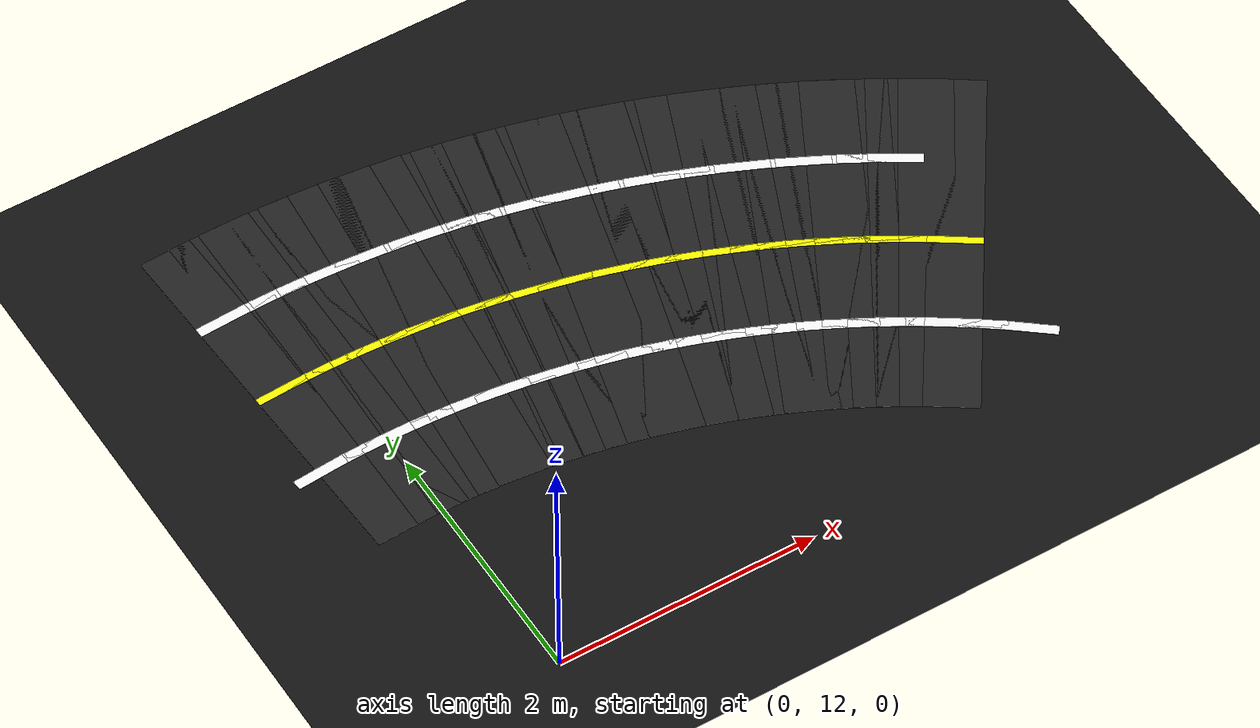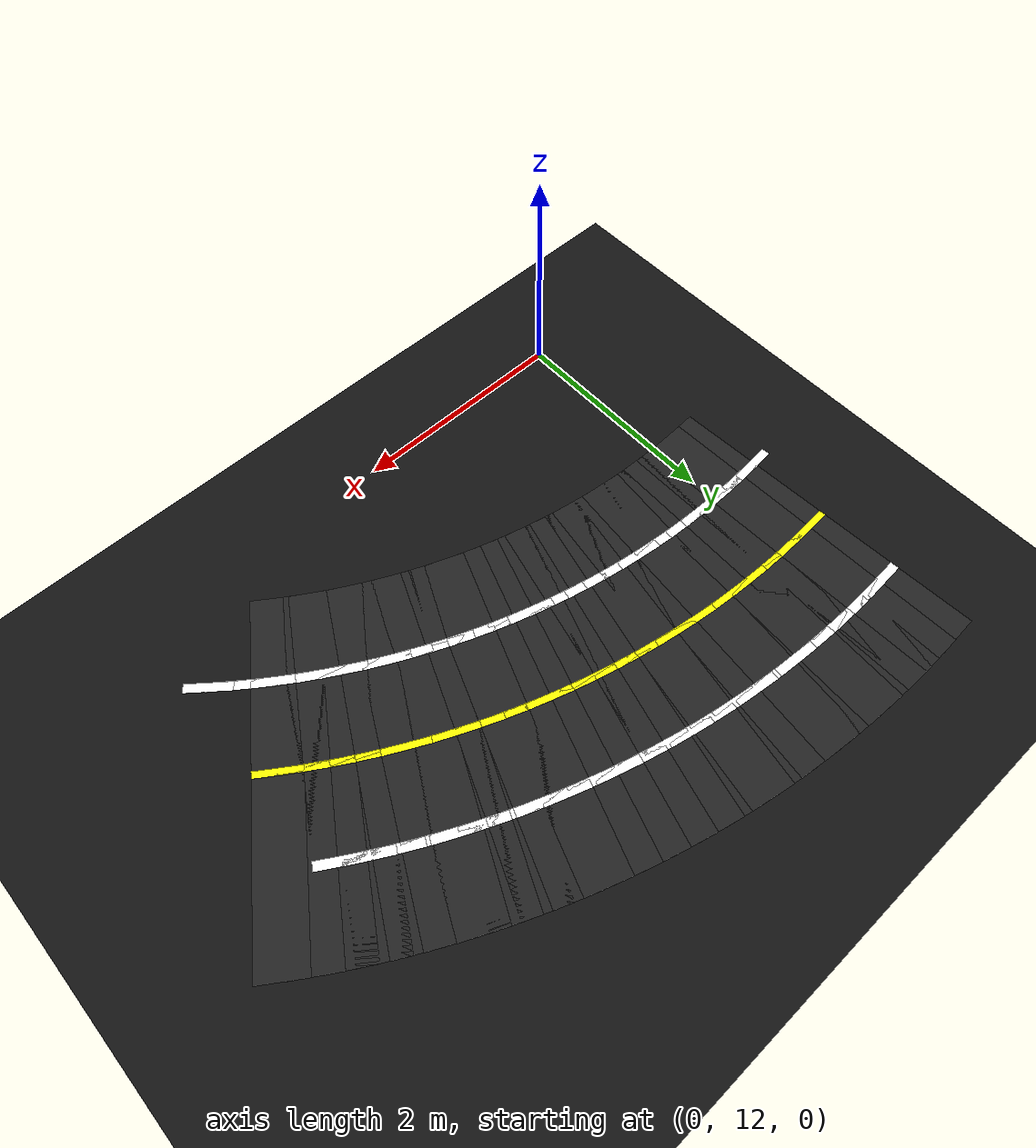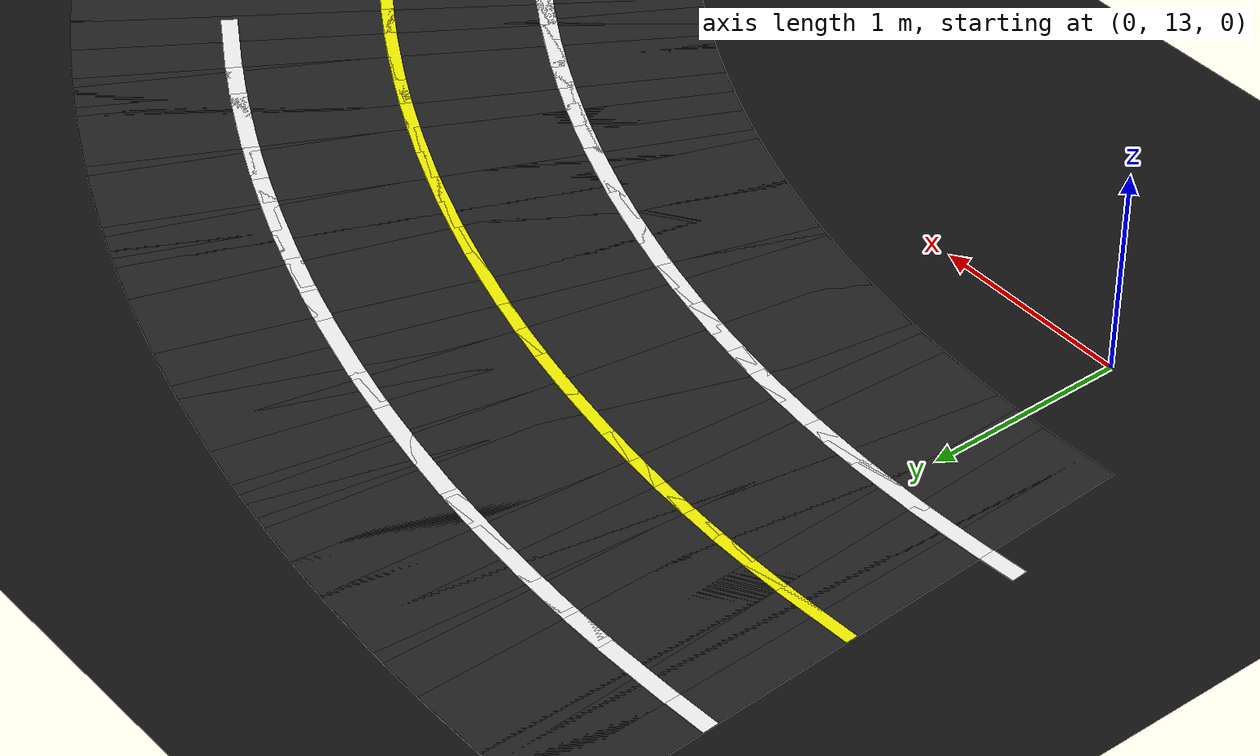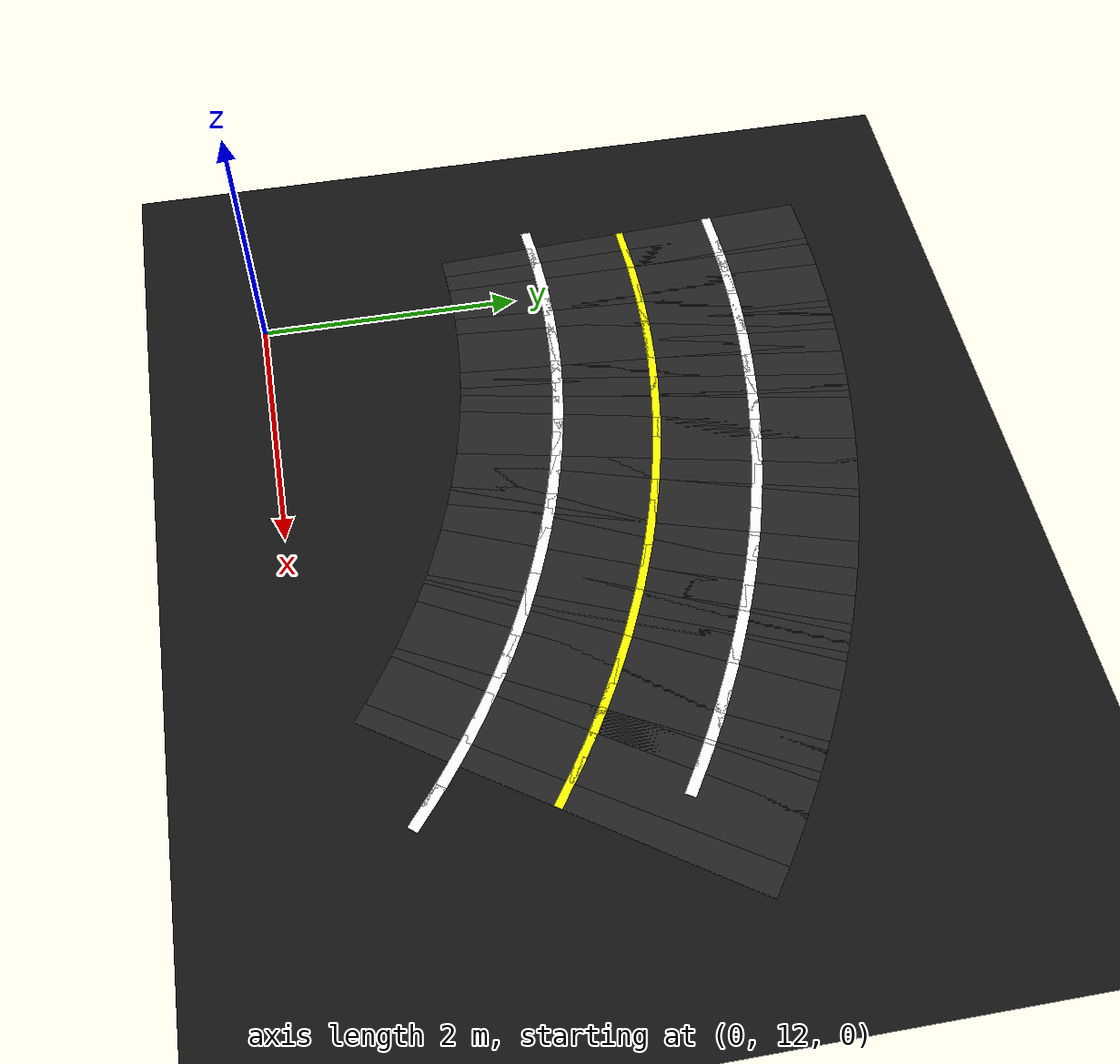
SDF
<sdf version="1.6">
 <world name="figure8_world">
  <model name="ground_plane">
   <static>true</static>
   <link name="link">
    <collision name="collision">
     <geometry><plane><normal>0 0 1</normal><size>120 120</size></plane></geometry>
    </collision>
    <visual name="visual">
     <geometry><plane><normal>0 0 1</normal><size>120 120</size></plane></geometry>
     <material><ambient>0.08 0.08 0.08 1</ambient><diffuse>0.08 0.08 0.08 1</diffuse></material>
    </visual>
   </link>
  </model>
  <model name="seg_00138">
   <static>true</static>
   <pose>4.2479 12.7457 0.0030 0 0 2.4609</pose>
   <link name="link">
    <collision name="collision"><geometry><box><size>0.4000 0.0800 0.002</size></box></geometry></collision>
    <visual name="visual">
     <geometry><box><size>0.4000 0.0800 0.002</size></box></geometry>
     <material><ambient>1 1 1 1</ambient><diffuse>1 1 1 1</diffuse></material>
    </visual>
   </link>
  </model>
  <model name="seg_00142">
   <static>true</static>
   <pose>4.1091 12.8551 0.0030 0 0 2.4871</pose>
   <link name="link">
    <collision name="collision"><geometry><box><size>0.4000 0.0800 0.002</size></box></geometry></collision>
    <visual name="visual">
     <geometry><box><size>0.4000 0.0800 0.002</size></box></geometry>
     <material><ambient>1 1 1 1</ambient><diffuse>1 1 1 1</diffuse></material>
    </visual>
   </link>
  </model>
  <model name="seg_00146">
   <static>true</static>
   <pose>3.9676 12.9609 0.0030 0 0 2.5133</pose>
   <link name="link">
    <collision name="collision"><geometry><box><size>0.4000 0.0800 0.002</size></box></geometry></collision>
    <visual name="visual">
     <geometry><box><size>0.4000 0.0800 0.002</size></box></geometry>
     <material><ambient>1 1 1 1</ambient><diffuse>1 1 1 1</diffuse></material>
    </visual>
   </link>
  </model>
  <model name="seg_00148">
   <static>true</static>
   <pose>4.2480 13.6809 0.0010 0 0 2.5395</pose>
   <link name="link">
    <collision name="collision"><geometry><box><size>0.4000 3.0000 0.002</size></box></geometry></collision>
    <visual name="visual">
     <geometry><box><size>0.4000 3.0000 0.002</size></box></geometry>
     <material><ambient>0.14 0.14 0.14 1</ambient><diffuse>0.14 0.14 0.14 1</diffuse></material>
    </visual>
   </link>
  </model>
  <model name="seg_00150">
   <static>true</static>
   <pose>3.8232 13.0629 0.0030 0 0 2.5395</pose>
   <link name="link">
    <collision name="collision"><geometry><box><size>0.4000 0.0800 0.002</size></box></geometry></collision>
    <visual name="visual">
     <geometry><box><size>0.4000 0.0800 0.002</size></box></geometry>
     <material><ambient>1 1 1 1</ambient><diffuse>1 1 1 1</diffuse></material>
    </visual>
   </link>
  </model>
  <model name="seg_00151">
   <static>true</static>
   <pose>4.2480 13.6809 0.0030 0 0 2.5395</pose>
   <link name="link">
    <collision name="collision"><geometry><box><size>0.4000 0.0600 0.002</size></box></geometry></collision>
    <visual name="visual">
     <geometry><box><size>0.4000 0.0600 0.002</size></box></geometry>
     <material><ambient>1 1 0 1</ambient><diffuse>1 1 0 1</diffuse></material>
    </visual>
   </link>
  </model>
  <model name="seg_00152">
   <static>true</static>
   <pose>4.0848 13.7900 0.0010 0 0 2.5656</pose>
   <link name="link">
    <collision name="collision"><geometry><box><size>0.4000 3.0000 0.002</size></box></geometry></collision>
    <visual name="visual">
     <geometry><box><size>0.4000 3.0000 0.002</size></box></geometry>
     <material><ambient>0.14 0.14 0.14 1</ambient><diffuse>0.14 0.14 0.14 1</diffuse></material>
    </visual>
   </link>
  </model>
  <model name="seg_00154">
   <static>true</static>
   <pose>3.6763 13.1610 0.0030 0 0 2.5656</pose>
   <link name="link">
    <collision name="collision"><geometry><box><size>0.4000 0.0800 0.002</size></box></geometry></collision>
    <visual name="visual">
     <geometry><box><size>0.4000 0.0800 0.002</size></box></geometry>
     <material><ambient>1 1 1 1</ambient><diffuse>1 1 1 1</diffuse></material>
    </visual>
   </link>
  </model>
  <model name="seg_00155">
   <static>true</static>
   <pose>4.0848 13.7900 0.0030 0 0 2.5656</pose>
   <link name="link">
    <collision name="collision"><geometry><box><size>0.4000 0.0600 0.002</size></box></geometry></collision>
    <visual name="visual">
     <geometry><box><size>0.4000 0.0600 0.002</size></box></geometry>
     <material><ambient>1 1 0 1</ambient><diffuse>1 1 0 1</diffuse></material>
    </visual>
   </link>
  </model>
  <model name="seg_00156">
   <static>true</static>
   <pose>3.9187 13.8948 0.0010 0 0 2.5918</pose>
   <link name="link">
    <collision name="collision"><geometry><box><size>0.4000 3.0000 0.002</size></box></geometry></collision>
    <visual name="visual">
     <geometry><box><size>0.4000 3.0000 0.002</size></box></geometry>
     <material><ambient>0.14 0.14 0.14 1</ambient><diffuse>0.14 0.14 0.14 1</diffuse></material>
    </visual>
   </link>
  </model>
  <model name="seg_00157">
   <static>true</static>
   <pose>4.3106 14.5343 0.0030 0 0 2.5918</pose>
   <link name="link">
    <collision name="collision"><geometry><box><size>0.4000 0.0800 0.002</size></box></geometry></collision>
    <visual name="visual">
     <geometry><box><size>0.4000 0.0800 0.002</size></box></geometry>
     <material><ambient>1 1 1 1</ambient><diffuse>1 1 1 1</diffuse></material>
    </visual>
   </link>
  </model>
  <model name="seg_00158">
   <static>true</static>
   <pose>3.5269 13.2553 0.0030 0 0 2.5918</pose>
   <link name="link">
    <collision name="collision"><geometry><box><size>0.4000 0.0800 0.002</size></box></geometry></collision>
    <visual name="visual">
     <geometry><box><size>0.4000 0.0800 0.002</size></box></geometry>
     <material><ambient>1 1 1 1</ambient><diffuse>1 1 1 1</diffuse></material>
    </visual>
   </link>
  </model>
  <model name="seg_00159">
   <static>true</static>
   <pose>3.9187 13.8948 0.0030 0 0 2.5918</pose>
   <link name="link">
    <collision name="collision"><geometry><box><size>0.4000 0.0600 0.002</size></box></geometry></collision>
    <visual name="visual">
     <geometry><box><size>0.4000 0.0600 0.002</size></box></geometry>
     <material><ambient>1 1 0 1</ambient><diffuse>1 1 0 1</diffuse></material>
    </visual>
   </link>
  </model>
  <model name="seg_00160">
   <static>true</static>
   <pose>3.7500 13.9952 0.0010 0 0 2.6180</pose>
   <link name="link">
    <collision name="collision"><geometry><box><size>0.4000 3.0000 0.002</size></box></geometry></collision>
    <visual name="visual">
     <geometry><box><size>0.4000 3.0000 0.002</size></box></geometry>
     <material><ambient>0.14 0.14 0.14 1</ambient><diffuse>0.14 0.14 0.14 1</diffuse></material>
    </visual>
   </link>
  </model>
  <model name="seg_00161">
   <static>true</static>
   <pose>4.1250 14.6447 0.0030 0 0 2.6180</pose>
   <link name="link">
    <collision name="collision"><geometry><box><size>0.4000 0.0800 0.002</size></box></geometry></collision>
    <visual name="visual">
     <geometry><box><size>0.4000 0.0800 0.002</size></box></geometry>
     <material><ambient>1 1 1 1</ambient><diffuse>1 1 1 1</diffuse></material>
    </visual>
   </link>
  </model>
  <model name="seg_00162">
   <static>true</static>
   <pose>3.3750 13.3457 0.0030 0 0 2.6180</pose>
   <link name="link">
    <collision name="collision"><geometry><box><size>0.4000 0.0800 0.002</size></box></geometry></collision>
    <visual name="visual">
     <geometry><box><size>0.4000 0.0800 0.002</size></box></geometry>
     <material><ambient>1 1 1 1</ambient><diffuse>1 1 1 1</diffuse></material>
    </visual>
   </link>
  </model>
  <model name="seg_00163">
   <static>true</static>
   <pose>3.7500 13.9952 0.0030 0 0 2.6180</pose>
   <link name="link">
    <collision name="collision"><geometry><box><size>0.4000 0.0600 0.002</size></box></geometry></collision>
    <visual name="visual">
     <geometry><box><size>0.4000 0.0600 0.002</size></box></geometry>
     <material><ambient>1 1 0 1</ambient><diffuse>1 1 0 1</diffuse></material>
    </visual>
   </link>
  </model>
  <model name="seg_00164">
   <static>true</static>
   <pose>3.5787 14.0911 0.0010 0 0 2.6442</pose>
   <link name="link">
    <collision name="collision"><geometry><box><size>0.4000 3.0000 0.002</size></box></geometry></collision>
    <visual name="visual">
     <geometry><box><size>0.4000 3.0000 0.002</size></box></geometry>
     <material><ambient>0.14 0.14 0.14 1</ambient><diffuse>0.14 0.14 0.14 1</diffuse></material>
    </visual>
   </link>
  </model>
  <model name="seg_00165">
   <static>true</static>
   <pose>3.9366 14.7502 0.0030 0 0 2.6442</pose>
   <link name="link">
    <collision name="collision"><geometry><box><size>0.4000 0.0800 0.002</size></box></geometry></collision>
    <visual name="visual">
     <geometry><box><size>0.4000 0.0800 0.002</size></box></geometry>
     <material><ambient>1 1 1 1</ambient><diffuse>1 1 1 1</diffuse></material>
    </visual>
   </link>
  </model>
  <model name="seg_00166">
   <static>true</static>
   <pose>3.2208 13.4320 0.0030 0 0 2.6442</pose>
   <link name="link">
    <collision name="collision"><geometry><box><size>0.4000 0.0800 0.002</size></box></geometry></collision>
    <visual name="visual">
     <geometry><box><size>0.4000 0.0800 0.002</size></box></geometry>
     <material><ambient>1 1 1 1</ambient><diffuse>1 1 1 1</diffuse></material>
    </visual>
   </link>
  </model>
  <model name="seg_00167">
   <static>true</static>
   <pose>3.5787 14.0911 0.0030 0 0 2.6442</pose>
   <link name="link">
    <collision name="collision"><geometry><box><size>0.4000 0.0600 0.002</size></box></geometry></collision>
    <visual name="visual">
     <geometry><box><size>0.4000 0.0600 0.002</size></box></geometry>
     <material><ambient>1 1 0 1</ambient><diffuse>1 1 0 1</diffuse></material>
    </visual>
   </link>
  </model>
  <model name="seg_00168">
   <static>true</static>
   <pose>3.4049 14.1825 0.0010 0 0 2.6704</pose>
   <link name="link">
    <collision name="collision"><geometry><box><size>0.4000 3.0000 0.002</size></box></geometry></collision>
    <visual name="visual">
     <geometry><box><size>0.4000 3.0000 0.002</size></box></geometry>
     <material><ambient>0.14 0.14 0.14 1</ambient><diffuse>0.14 0.14 0.14 1</diffuse></material>
    </visual>
   </link>
  </model>
  <model name="seg_00169">
   <static>true</static>
   <pose>3.7454 14.8508 0.0030 0 0 2.6704</pose>
   <link name="link">
    <collision name="collision"><geometry><box><size>0.4000 0.0800 0.002</size></box></geometry></collision>
    <visual name="visual">
     <geometry><box><size>0.4000 0.0800 0.002</size></box></geometry>
     <material><ambient>1 1 1 1</ambient><diffuse>1 1 1 1</diffuse></material>
    </visual>
   </link>
  </model>
  <model name="seg_00170">
   <static>true</static>
   <pose>3.0644 13.5143 0.0030 0 0 2.6704</pose>
   <link name="link">
    <collision name="collision"><geometry><box><size>0.4000 0.0800 0.002</size></box></geometry></collision>
    <visual name="visual">
     <geometry><box><size>0.4000 0.0800 0.002</size></box></geometry>
     <material><ambient>1 1 1 1</ambient><diffuse>1 1 1 1</diffuse></material>
    </visual>
   </link>
  </model>
  <model name="seg_00171">
   <static>true</static>
   <pose>3.4049 14.1825 0.0030 0 0 2.6704</pose>
   <link name="link">
    <collision name="collision"><geometry><box><size>0.4000 0.0600 0.002</size></box></geometry></collision>
    <visual name="visual">
     <geometry><box><size>0.4000 0.0600 0.002</size></box></geometry>
     <material><ambient>1 1 0 1</ambient><diffuse>1 1 0 1</diffuse></material>
    </visual>
   </link>
  </model>
  <model name="seg_00172">
   <static>true</static>
   <pose>3.2288 14.2694 0.0010 0 0 2.6965</pose>
   <link name="link">
    <collision name="collision"><geometry><box><size>0.4000 3.0000 0.002</size></box></geometry></collision>
    <visual name="visual">
     <geometry><box><size>0.4000 3.0000 0.002</size></box></geometry>
     <material><ambient>0.14 0.14 0.14 1</ambient><diffuse>0.14 0.14 0.14 1</diffuse></material>
    </visual>
   </link>
  </model>
  <model name="seg_00173">
   <static>true</static>
   <pose>3.5517 14.9463 0.0030 0 0 2.6965</pose>
   <link name="link">
    <collision name="collision"><geometry><box><size>0.4000 0.0800 0.002</size></box></geometry></collision>
    <visual name="visual">
     <geometry><box><size>0.4000 0.0800 0.002</size></box></geometry>
     <material><ambient>1 1 1 1</ambient><diffuse>1 1 1 1</diffuse></material>
    </visual>
   </link>
  </model>
  <model name="seg_00174">
   <static>true</static>
   <pose>2.9059 13.5925 0.0030 0 0 2.6965</pose>
   <link name="link">
    <collision name="collision"><geometry><box><size>0.4000 0.0800 0.002</size></box></geometry></collision>
    <visual name="visual">
     <geometry><box><size>0.4000 0.0800 0.002</size></box></geometry>
     <material><ambient>1 1 1 1</ambient><diffuse>1 1 1 1</diffuse></material>
    </visual>
   </link>
  </model>
  <model name="seg_00175">
   <static>true</static>
   <pose>3.2288 14.2694 0.0030 0 0 2.6965</pose>
   <link name="link">
    <collision name="collision"><geometry><box><size>0.4000 0.0600 0.002</size></box></geometry></collision>
    <visual name="visual">
     <geometry><box><size>0.4000 0.0600 0.002</size></box></geometry>
     <material><ambient>1 1 0 1</ambient><diffuse>1 1 0 1</diffuse></material>
    </visual>
   </link>
  </model>
  <model name="seg_00176">
   <static>true</static>
   <pose>3.0505 14.3516 0.0010 0 0 2.7227</pose>
   <link name="link">
    <collision name="collision"><geometry><box><size>0.4000 3.0000 0.002</size></box></geometry></collision>
    <visual name="visual">
     <geometry><box><size>0.4000 3.0000 0.002</size></box></geometry>
     <material><ambient>0.14 0.14 0.14 1</ambient><diffuse>0.14 0.14 0.14 1</diffuse></material>
    </visual>
   </link>
  </model>
  <model name="seg_00177">
   <static>true</static>
   <pose>3.3556 15.0368 0.0030 0 0 2.7227</pose>
   <link name="link">
    <collision name="collision"><geometry><box><size>0.4000 0.0800 0.002</size></box></geometry></collision>
    <visual name="visual">
     <geometry><box><size>0.4000 0.0800 0.002</size></box></geometry>
     <material><ambient>1 1 1 1</ambient><diffuse>1 1 1 1</diffuse></material>
    </visual>
   </link>
  </model>
  <model name="seg_00178">
   <static>true</static>
   <pose>2.7455 13.6664 0.0030 0 0 2.7227</pose>
   <link name="link">
    <collision name="collision"><geometry><box><size>0.4000 0.0800 0.002</size></box></geometry></collision>
    <visual name="visual">
     <geometry><box><size>0.4000 0.0800 0.002</size></box></geometry>
     <material><ambient>1 1 1 1</ambient><diffuse>1 1 1 1</diffuse></material>
    </visual>
   </link>
  </model>
  <model name="seg_00179">
   <static>true</static>
   <pose>3.0505 14.3516 0.0030 0 0 2.7227</pose>
   <link name="link">
    <collision name="collision"><geometry><box><size>0.4000 0.0600 0.002</size></box></geometry></collision>
    <visual name="visual">
     <geometry><box><size>0.4000 0.0600 0.002</size></box></geometry>
     <material><ambient>1 1 0 1</ambient><diffuse>1 1 0 1</diffuse></material>
    </visual>
   </link>
  </model>
  <model name="seg_00180">
   <static>true</static>
   <pose>2.8701 14.4291 0.0010 0 0 2.7489</pose>
   <link name="link">
    <collision name="collision"><geometry><box><size>0.4000 3.0000 0.002</size></box></geometry></collision>
    <visual name="visual">
     <geometry><box><size>0.4000 3.0000 0.002</size></box></geometry>
     <material><ambient>0.14 0.14 0.14 1</ambient><diffuse>0.14 0.14 0.14 1</diffuse></material>
    </visual>
   </link>
  </model>
  <model name="seg_00181">
   <static>true</static>
   <pose>3.1571 15.1220 0.0030 0 0 2.7489</pose>
   <link name="link">
    <collision name="collision"><geometry><box><size>0.4000 0.0800 0.002</size></box></geometry></collision>
    <visual name="visual">
     <geometry><box><size>0.4000 0.0800 0.002</size></box></geometry>
     <material><ambient>1 1 1 1</ambient><diffuse>1 1 1 1</diffuse></material>
    </visual>
   </link>
  </model>
  <model name="seg_00182">
   <static>true</static>
   <pose>2.5831 13.7362 0.0030 0 0 2.7489</pose>
   <link name="link">
    <collision name="collision"><geometry><box><size>0.4000 0.0800 0.002</size></box></geometry></collision>
    <visual name="visual">
     <geometry><box><size>0.4000 0.0800 0.002</size></box></geometry>
     <material><ambient>1 1 1 1</ambient><diffuse>1 1 1 1</diffuse></material>
    </visual>
   </link>
  </model>
  <model name="seg_00183">
   <static>true</static>
   <pose>2.8701 14.4291 0.0030 0 0 2.7489</pose>
   <link name="link">
    <collision name="collision"><geometry><box><size>0.4000 0.0600 0.002</size></box></geometry></collision>
    <visual name="visual">
     <geometry><box><size>0.4000 0.0600 0.002</size></box></geometry>
     <material><ambient>1 1 0 1</ambient><diffuse>1 1 0 1</diffuse></material>
    </visual>
   </link>
  </model>
  <model name="seg_00184">
   <static>true</static>
   <pose>2.6878 14.5019 0.0010 0 0 2.7751</pose>
   <link name="link">
    <collision name="collision"><geometry><box><size>0.4000 3.0000 0.002</size></box></geometry></collision>
    <visual name="visual">
     <geometry><box><size>0.4000 3.0000 0.002</size></box></geometry>
     <material><ambient>0.14 0.14 0.14 1</ambient><diffuse>0.14 0.14 0.14 1</diffuse></material>
    </visual>
   </link>
  </model>
  <model name="seg_00185">
   <static>true</static>
   <pose>2.9565 15.2020 0.0030 0 0 2.7751</pose>
   <link name="link">
    <collision name="collision"><geometry><box><size>0.4000 0.0800 0.002</size></box></geometry></collision>
    <visual name="visual">
     <geometry><box><size>0.4000 0.0800 0.002</size></box></geometry>
     <material><ambient>1 1 1 1</ambient><diffuse>1 1 1 1</diffuse></material>
    </visual>
   </link>
  </model>
  <model name="seg_00186">
   <static>true</static>
   <pose>2.4190 13.8017 0.0030 0 0 2.7751</pose>
   <link name="link">
    <collision name="collision"><geometry><box><size>0.4000 0.0800 0.002</size></box></geometry></collision>
    <visual name="visual">
     <geometry><box><size>0.4000 0.0800 0.002</size></box></geometry>
     <material><ambient>1 1 1 1</ambient><diffuse>1 1 1 1</diffuse></material>
    </visual>
   </link>
  </model>
  <model name="seg_00187">
   <static>true</static>
   <pose>2.6878 14.5019 0.0030 0 0 2.7751</pose>
   <link name="link">
    <collision name="collision"><geometry><box><size>0.4000 0.0600 0.002</size></box></geometry></collision>
    <visual name="visual">
     <geometry><box><size>0.4000 0.0600 0.002</size></box></geometry>
     <material><ambient>1 1 0 1</ambient><diffuse>1 1 0 1</diffuse></material>
    </visual>
   </link>
  </model>
  <model name="seg_00188">
   <static>true</static>
   <pose>2.5036 14.5698 0.0010 0 0 2.8013</pose>
   <link name="link">
    <collision name="collision"><geometry><box><size>0.4000 3.0000 0.002</size></box></geometry></collision>
    <visual name="visual">
     <geometry><box><size>0.4000 3.0000 0.002</size></box></geometry>
     <material><ambient>0.14 0.14 0.14 1</ambient><diffuse>0.14 0.14 0.14 1</diffuse></material>
    </visual>
   </link>
  </model>
  <model name="seg_00189">
   <static>true</static>
   <pose>2.7539 15.2768 0.0030 0 0 2.8013</pose>
   <link name="link">
    <collision name="collision"><geometry><box><size>0.4000 0.0800 0.002</size></box></geometry></collision>
    <visual name="visual">
     <geometry><box><size>0.4000 0.0800 0.002</size></box></geometry>
     <material><ambient>1 1 1 1</ambient><diffuse>1 1 1 1</diffuse></material>
    </visual>
   </link>
  </model>
  <model name="seg_00190">
   <static>true</static>
   <pose>2.2532 13.8628 0.0030 0 0 2.8013</pose>
   <link name="link">
    <collision name="collision"><geometry><box><size>0.4000 0.0800 0.002</size></box></geometry></collision>
    <visual name="visual">
     <geometry><box><size>0.4000 0.0800 0.002</size></box></geometry>
     <material><ambient>1 1 1 1</ambient><diffuse>1 1 1 1</diffuse></material>
    </visual>
   </link>
  </model>
  <model name="seg_00191">
   <static>true</static>
   <pose>2.5036 14.5698 0.0030 0 0 2.8013</pose>
   <link name="link">
    <collision name="collision"><geometry><box><size>0.4000 0.0600 0.002</size></box></geometry></collision>
    <visual name="visual">
     <geometry><box><size>0.4000 0.0600 0.002</size></box></geometry>
     <material><ambient>1 1 0 1</ambient><diffuse>1 1 0 1</diffuse></material>
    </visual>
   </link>
  </model>
  <model name="seg_00192">
   <static>true</static>
   <pose>2.3176 14.6329 0.0010 0 0 2.8274</pose>
   <link name="link">
    <collision name="collision"><geometry><box><size>0.4000 3.0000 0.002</size></box></geometry></collision>
    <visual name="visual">
     <geometry><box><size>0.4000 3.0000 0.002</size></box></geometry>
     <material><ambient>0.14 0.14 0.14 1</ambient><diffuse>0.14 0.14 0.14 1</diffuse></material>
    </visual>
   </link>
  </model>
  <model name="seg_00193">
   <static>true</static>
   <pose>2.5494 15.3462 0.0030 0 0 2.8274</pose>
   <link name="link">
    <collision name="collision"><geometry><box><size>0.4000 0.0800 0.002</size></box></geometry></collision>
    <visual name="visual">
     <geometry><box><size>0.4000 0.0800 0.002</size></box></geometry>
     <material><ambient>1 1 1 1</ambient><diffuse>1 1 1 1</diffuse></material>
    </visual>
   </link>
  </model>
  <model name="seg_00194">
   <static>true</static>
   <pose>2.0859 13.9196 0.0030 0 0 2.8274</pose>
   <link name="link">
    <collision name="collision"><geometry><box><size>0.4000 0.0800 0.002</size></box></geometry></collision>
    <visual name="visual">
     <geometry><box><size>0.4000 0.0800 0.002</size></box></geometry>
     <material><ambient>1 1 1 1</ambient><diffuse>1 1 1 1</diffuse></material>
    </visual>
   </link>
  </model>
  <model name="seg_00195">
   <static>true</static>
   <pose>2.3176 14.6329 0.0030 0 0 2.8274</pose>
   <link name="link">
    <collision name="collision"><geometry><box><size>0.4000 0.0600 0.002</size></box></geometry></collision>
    <visual name="visual">
     <geometry><box><size>0.4000 0.0600 0.002</size></box></geometry>
     <material><ambient>1 1 0 1</ambient><diffuse>1 1 0 1</diffuse></material>
    </visual>
   </link>
  </model>
  <model name="seg_00196">
   <static>true</static>
   <pose>2.1301 14.6911 0.0010 0 0 2.8536</pose>
   <link name="link">
    <collision name="collision"><geometry><box><size>0.4000 3.0000 0.002</size></box></geometry></collision>
    <visual name="visual">
     <geometry><box><size>0.4000 3.0000 0.002</size></box></geometry>
     <material><ambient>0.14 0.14 0.14 1</ambient><diffuse>0.14 0.14 0.14 1</diffuse></material>
    </visual>
   </link>
  </model>
  <model name="seg_00197">
   <static>true</static>
   <pose>2.3431 15.4103 0.0030 0 0 2.8536</pose>
   <link name="link">
    <collision name="collision"><geometry><box><size>0.4000 0.0800 0.002</size></box></geometry></collision>
    <visual name="visual">
     <geometry><box><size>0.4000 0.0800 0.002</size></box></geometry>
     <material><ambient>1 1 1 1</ambient><diffuse>1 1 1 1</diffuse></material>
    </visual>
   </link>
  </model>
  <model name="seg_00198">
   <static>true</static>
   <pose>1.9171 13.9720 0.0030 0 0 2.8536</pose>
   <link name="link">
    <collision name="collision"><geometry><box><size>0.4000 0.0800 0.002</size></box></geometry></collision>
    <visual name="visual">
     <geometry><box><size>0.4000 0.0800 0.002</size></box></geometry>
     <material><ambient>1 1 1 1</ambient><diffuse>1 1 1 1</diffuse></material>
    </visual>
   </link>
  </model>
  <model name="seg_00199">
   <static>true</static>
   <pose>2.1301 14.6911 0.0030 0 0 2.8536</pose>
   <link name="link">
    <collision name="collision"><geometry><box><size>0.4000 0.0600 0.002</size></box></geometry></collision>
    <visual name="visual">
     <geometry><box><size>0.4000 0.0600 0.002</size></box></geometry>
     <material><ambient>1 1 0 1</ambient><diffuse>1 1 0 1</diffuse></material>
    </visual>
   </link>
  </model>
  <model name="seg_00200">
   <static>true</static>
   <pose>1.9411 14.7444 0.0010 0 0 2.8798</pose>
   <link name="link">
    <collision name="collision"><geometry><box><size>0.4000 3.0000 0.002</size></box></geometry></collision>
    <visual name="visual">
     <geometry><box><size>0.4000 3.0000 0.002</size></box></geometry>
     <material><ambient>0.14 0.14 0.14 1</ambient><diffuse>0.14 0.14 0.14 1</diffuse></material>
    </visual>
   </link>
  </model>
  <model name="seg_00201">
   <static>true</static>
   <pose>2.1353 15.4689 0.0030 0 0 2.8798</pose>
   <link name="link">
    <collision name="collision"><geometry><box><size>0.4000 0.0800 0.002</size></box></geometry></collision>
    <visual name="visual">
     <geometry><box><size>0.4000 0.0800 0.002</size></box></geometry>
     <material><ambient>1 1 1 1</ambient><diffuse>1 1 1 1</diffuse></material>
    </visual>
   </link>
  </model>
  <model name="seg_00202">
   <static>true</static>
   <pose>1.7470 14.0200 0.0030 0 0 2.8798</pose>
   <link name="link">
    <collision name="collision"><geometry><box><size>0.4000 0.0800 0.002</size></box></geometry></collision>
    <visual name="visual">
     <geometry><box><size>0.4000 0.0800 0.002</size></box></geometry>
     <material><ambient>1 1 1 1</ambient><diffuse>1 1 1 1</diffuse></material>
    </visual>
   </link>
  </model>
  <model name="seg_00203">
   <static>true</static>
   <pose>1.9411 14.7444 0.0030 0 0 2.8798</pose>
   <link name="link">
    <collision name="collision"><geometry><box><size>0.4000 0.0600 0.002</size></box></geometry></collision>
    <visual name="visual">
     <geometry><box><size>0.4000 0.0600 0.002</size></box></geometry>
     <material><ambient>1 1 0 1</ambient><diffuse>1 1 0 1</diffuse></material>
    </visual>
   </link>
  </model>
  <model name="seg_00204">
   <static>true</static>
   <pose>1.7508 14.7928 0.0010 0 0 2.9060</pose>
   <link name="link">
    <collision name="collision"><geometry><box><size>0.4000 3.0000 0.002</size></box></geometry></collision>
    <visual name="visual">
     <geometry><box><size>0.4000 3.0000 0.002</size></box></geometry>
     <material><ambient>0.14 0.14 0.14 1</ambient><diffuse>0.14 0.14 0.14 1</diffuse></material>
    </visual>
   </link>
  </model>
  <model name="seg_00205">
   <static>true</static>
   <pose>1.9259 15.5221 0.0030 0 0 2.9060</pose>
   <link name="link">
    <collision name="collision"><geometry><box><size>0.4000 0.0800 0.002</size></box></geometry></collision>
    <visual name="visual">
     <geometry><box><size>0.4000 0.0800 0.002</size></box></geometry>
     <material><ambient>1 1 1 1</ambient><diffuse>1 1 1 1</diffuse></material>
    </visual>
   </link>
  </model>
  <model name="seg_00206">
   <static>true</static>
   <pose>1.5758 14.0635 0.0030 0 0 2.9060</pose>
   <link name="link">
    <collision name="collision"><geometry><box><size>0.4000 0.0800 0.002</size></box></geometry></collision>
    <visual name="visual">
     <geometry><box><size>0.4000 0.0800 0.002</size></box></geometry>
     <material><ambient>1 1 1 1</ambient><diffuse>1 1 1 1</diffuse></material>
    </visual>
   </link>
  </model>
  <model name="seg_00207">
   <static>true</static>
   <pose>1.7508 14.7928 0.0030 0 0 2.9060</pose>
   <link name="link">
    <collision name="collision"><geometry><box><size>0.4000 0.0600 0.002</size></box></geometry></collision>
    <visual name="visual">
     <geometry><box><size>0.4000 0.0600 0.002</size></box></geometry>
     <material><ambient>1 1 0 1</ambient><diffuse>1 1 0 1</diffuse></material>
    </visual>
   </link>
  </model>
  <model name="seg_00208">
   <static>true</static>
   <pose>1.5593 14.8361 0.0010 0 0 2.9322</pose>
   <link name="link">
    <collision name="collision"><geometry><box><size>0.4000 3.0000 0.002</size></box></geometry></collision>
    <visual name="visual">
     <geometry><box><size>0.4000 3.0000 0.002</size></box></geometry>
     <material><ambient>0.14 0.14 0.14 1</ambient><diffuse>0.14 0.14 0.14 1</diffuse></material>
    </visual>
   </link>
  </model>
  <model name="seg_00209">
   <static>true</static>
   <pose>1.7153 15.5697 0.0030 0 0 2.9322</pose>
   <link name="link">
    <collision name="collision"><geometry><box><size>0.4000 0.0800 0.002</size></box></geometry></collision>
    <visual name="visual">
     <geometry><box><size>0.4000 0.0800 0.002</size></box></geometry>
     <material><ambient>1 1 1 1</ambient><diffuse>1 1 1 1</diffuse></material>
    </visual>
   </link>
  </model>
  <model name="seg_00210">
   <static>true</static>
   <pose>1.4034 14.1025 0.0030 0 0 2.9322</pose>
   <link name="link">
    <collision name="collision"><geometry><box><size>0.4000 0.0800 0.002</size></box></geometry></collision>
    <visual name="visual">
     <geometry><box><size>0.4000 0.0800 0.002</size></box></geometry>
     <material><ambient>1 1 1 1</ambient><diffuse>1 1 1 1</diffuse></material>
    </visual>
   </link>
  </model>
  <model name="seg_00211">
   <static>true</static>
   <pose>1.5593 14.8361 0.0030 0 0 2.9322</pose>
   <link name="link">
    <collision name="collision"><geometry><box><size>0.4000 0.0600 0.002</size></box></geometry></collision>
    <visual name="visual">
     <geometry><box><size>0.4000 0.0600 0.002</size></box></geometry>
     <material><ambient>1 1 0 1</ambient><diffuse>1 1 0 1</diffuse></material>
    </visual>
   </link>
  </model>
  <model name="seg_00212">
   <static>true</static>
   <pose>1.3668 14.8744 0.0010 0 0 2.9583</pose>
   <link name="link">
    <collision name="collision"><geometry><box><size>0.4000 3.0000 0.002</size></box></geometry></collision>
    <visual name="visual">
     <geometry><box><size>0.4000 3.0000 0.002</size></box></geometry>
     <material><ambient>0.14 0.14 0.14 1</ambient><diffuse>0.14 0.14 0.14 1</diffuse></material>
    </visual>
   </link>
  </model>
  <model name="seg_00213">
   <static>true</static>
   <pose>1.5034 15.6119 0.0030 0 0 2.9583</pose>
   <link name="link">
    <collision name="collision"><geometry><box><size>0.4000 0.0800 0.002</size></box></geometry></collision>
    <visual name="visual">
     <geometry><box><size>0.4000 0.0800 0.002</size></box></geometry>
     <material><ambient>1 1 1 1</ambient><diffuse>1 1 1 1</diffuse></material>
    </visual>
   </link>
  </model>
  <model name="seg_00214">
   <static>true</static>
   <pose>1.2301 14.1370 0.0030 0 0 2.9583</pose>
   <link name="link">
    <collision name="collision"><geometry><box><size>0.4000 0.0800 0.002</size></box></geometry></collision>
    <visual name="visual">
     <geometry><box><size>0.4000 0.0800 0.002</size></box></geometry>
     <material><ambient>1 1 1 1</ambient><diffuse>1 1 1 1</diffuse></material>
    </visual>
   </link>
  </model>
  <model name="seg_00215">
   <static>true</static>
   <pose>1.3668 14.8744 0.0030 0 0 2.9583</pose>
   <link name="link">
    <collision name="collision"><geometry><box><size>0.4000 0.0600 0.002</size></box></geometry></collision>
    <visual name="visual">
     <geometry><box><size>0.4000 0.0600 0.002</size></box></geometry>
     <material><ambient>1 1 0 1</ambient><diffuse>1 1 0 1</diffuse></material>
    </visual>
   </link>
  </model>
  <model name="seg_00216">
   <static>true</static>
   <pose>1.1733 14.9077 0.0010 0 0 2.9845</pose>
   <link name="link">
    <collision name="collision"><geometry><box><size>0.4000 3.0000 0.002</size></box></geometry></collision>
    <visual name="visual">
     <geometry><box><size>0.4000 3.0000 0.002</size></box></geometry>
     <material><ambient>0.14 0.14 0.14 1</ambient><diffuse>0.14 0.14 0.14 1</diffuse></material>
    </visual>
   </link>
  </model>
  <model name="seg_00217">
   <static>true</static>
   <pose>1.2906 15.6484 0.0030 0 0 2.9845</pose>
   <link name="link">
    <collision name="collision"><geometry><box><size>0.4000 0.0800 0.002</size></box></geometry></collision>
    <visual name="visual">
     <geometry><box><size>0.4000 0.0800 0.002</size></box></geometry>
     <material><ambient>1 1 1 1</ambient><diffuse>1 1 1 1</diffuse></material>
    </visual>
   </link>
  </model>
  <model name="seg_00218">
   <static>true</static>
   <pose>1.0559 14.1669 0.0030 0 0 2.9845</pose>
   <link name="link">
    <collision name="collision"><geometry><box><size>0.4000 0.0800 0.002</size></box></geometry></collision>
    <visual name="visual">
     <geometry><box><size>0.4000 0.0800 0.002</size></box></geometry>
     <material><ambient>1 1 1 1</ambient><diffuse>1 1 1 1</diffuse></material>
    </visual>
   </link>
  </model>
  <model name="seg_00219">
   <static>true</static>
   <pose>1.1733 14.9077 0.0030 0 0 2.9845</pose>
   <link name="link">
    <collision name="collision"><geometry><box><size>0.4000 0.0600 0.002</size></box></geometry></collision>
    <visual name="visual">
     <geometry><box><size>0.4000 0.0600 0.002</size></box></geometry>
     <material><ambient>1 1 0 1</ambient><diffuse>1 1 0 1</diffuse></material>
    </visual>
   </link>
  </model>
  <model name="seg_00220">
   <static>true</static>
   <pose>0.9789 14.9358 0.0010 0 0 3.0107</pose>
   <link name="link">
    <collision name="collision"><geometry><box><size>0.4000 3.0000 0.002</size></box></geometry></collision>
    <visual name="visual">
     <geometry><box><size>0.4000 3.0000 0.002</size></box></geometry>
     <material><ambient>0.14 0.14 0.14 1</ambient><diffuse>0.14 0.14 0.14 1</diffuse></material>
    </visual>
   </link>
  </model>
  <model name="seg_00221">
   <static>true</static>
   <pose>1.0768 15.6794 0.0030 0 0 3.0107</pose>
   <link name="link">
    <collision name="collision"><geometry><box><size>0.4000 0.0800 0.002</size></box></geometry></collision>
    <visual name="visual">
     <geometry><box><size>0.4000 0.0800 0.002</size></box></geometry>
     <material><ambient>1 1 1 1</ambient><diffuse>1 1 1 1</diffuse></material>
    </visual>
   </link>
  </model>
  <model name="seg_00222">
   <static>true</static>
   <pose>0.8811 14.1923 0.0030 0 0 3.0107</pose>
   <link name="link">
    <collision name="collision"><geometry><box><size>0.4000 0.0800 0.002</size></box></geometry></collision>
    <visual name="visual">
     <geometry><box><size>0.4000 0.0800 0.002</size></box></geometry>
     <material><ambient>1 1 1 1</ambient><diffuse>1 1 1 1</diffuse></material>
    </visual>
   </link>
  </model>
  <model name="seg_00223">
   <static>true</static>
   <pose>0.9789 14.9358 0.0030 0 0 3.0107</pose>
   <link name="link">
    <collision name="collision"><geometry><box><size>0.4000 0.0600 0.002</size></box></geometry></collision>
    <visual name="visual">
     <geometry><box><size>0.4000 0.0600 0.002</size></box></geometry>
     <material><ambient>1 1 0 1</ambient><diffuse>1 1 0 1</diffuse></material>
    </visual>
   </link>
  </model>
  <model name="seg_00224">
   <static>true</static>
   <pose>0.7840 14.9589 0.0010 0 0 3.0369</pose>
   <link name="link">
    <collision name="collision"><geometry><box><size>0.4000 3.0000 0.002</size></box></geometry></collision>
    <visual name="visual">
     <geometry><box><size>0.4000 3.0000 0.002</size></box></geometry>
     <material><ambient>0.14 0.14 0.14 1</ambient><diffuse>0.14 0.14 0.14 1</diffuse></material>
    </visual>
   </link>
  </model>
  <model name="seg_00225">
   <static>true</static>
   <pose>0.8624 15.7048 0.0030 0 0 3.0369</pose>
   <link name="link">
    <collision name="collision"><geometry><box><size>0.4000 0.0800 0.002</size></box></geometry></collision>
    <visual name="visual">
     <geometry><box><size>0.4000 0.0800 0.002</size></box></geometry>
     <material><ambient>1 1 1 1</ambient><diffuse>1 1 1 1</diffuse></material>
    </visual>
   </link>
  </model>
  <model name="seg_00226">
   <static>true</static>
   <pose>0.7056 14.2130 0.0030 0 0 3.0369</pose>
   <link name="link">
    <collision name="collision"><geometry><box><size>0.4000 0.0800 0.002</size></box></geometry></collision>
    <visual name="visual">
     <geometry><box><size>0.4000 0.0800 0.002</size></box></geometry>
     <material><ambient>1 1 1 1</ambient><diffuse>1 1 1 1</diffuse></material>
    </visual>
   </link>
  </model>
  <model name="seg_00227">
   <static>true</static>
   <pose>0.7840 14.9589 0.0030 0 0 3.0369</pose>
   <link name="link">
    <collision name="collision"><geometry><box><size>0.4000 0.0600 0.002</size></box></geometry></collision>
    <visual name="visual">
     <geometry><box><size>0.4000 0.0600 0.002</size></box></geometry>
     <material><ambient>1 1 0 1</ambient><diffuse>1 1 0 1</diffuse></material>
    </visual>
   </link>
  </model>
  <model name="seg_00228">
   <static>true</static>
   <pose>0.5884 14.9769 0.0010 0 0 3.0631</pose>
   <link name="link">
    <collision name="collision"><geometry><box><size>0.4000 3.0000 0.002</size></box></geometry></collision>
    <visual name="visual">
     <geometry><box><size>0.4000 3.0000 0.002</size></box></geometry>
     <material><ambient>0.14 0.14 0.14 1</ambient><diffuse>0.14 0.14 0.14 1</diffuse></material>
    </visual>
   </link>
  </model>
  <model name="seg_00229">
   <static>true</static>
   <pose>0.6473 15.7246 0.0030 0 0 3.0631</pose>
   <link name="link">
    <collision name="collision"><geometry><box><size>0.4000 0.0800 0.002</size></box></geometry></collision>
    <visual name="visual">
     <geometry><box><size>0.4000 0.0800 0.002</size></box></geometry>
     <material><ambient>1 1 1 1</ambient><diffuse>1 1 1 1</diffuse></material>
    </visual>
   </link>
  </model>
  <model name="seg_00230">
   <static>true</static>
   <pose>0.5296 14.2292 0.0030 0 0 3.0631</pose>
   <link name="link">
    <collision name="collision"><geometry><box><size>0.4000 0.0800 0.002</size></box></geometry></collision>
    <visual name="visual">
     <geometry><box><size>0.4000 0.0800 0.002</size></box></geometry>
     <material><ambient>1 1 1 1</ambient><diffuse>1 1 1 1</diffuse></material>
    </visual>
   </link>
  </model>
  <model name="seg_00231">
   <static>true</static>
   <pose>0.5884 14.9769 0.0030 0 0 3.0631</pose>
   <link name="link">
    <collision name="collision"><geometry><box><size>0.4000 0.0600 0.002</size></box></geometry></collision>
    <visual name="visual">
     <geometry><box><size>0.4000 0.0600 0.002</size></box></geometry>
     <material><ambient>1 1 0 1</ambient><diffuse>1 1 0 1</diffuse></material>
    </visual>
   </link>
  </model>
  <model name="seg_00232">
   <static>true</static>
   <pose>0.3925 14.9897 0.0010 0 0 3.0892</pose>
   <link name="link">
    <collision name="collision"><geometry><box><size>0.4000 3.0000 0.002</size></box></geometry></collision>
    <visual name="visual">
     <geometry><box><size>0.4000 3.0000 0.002</size></box></geometry>
     <material><ambient>0.14 0.14 0.14 1</ambient><diffuse>0.14 0.14 0.14 1</diffuse></material>
    </visual>
   </link>
  </model>
  <model name="seg_00233">
   <static>true</static>
   <pose>0.4318 15.7387 0.0030 0 0 3.0892</pose>
   <link name="link">
    <collision name="collision"><geometry><box><size>0.4000 0.0800 0.002</size></box></geometry></collision>
    <visual name="visual">
     <geometry><box><size>0.4000 0.0800 0.002</size></box></geometry>
     <material><ambient>1 1 1 1</ambient><diffuse>1 1 1 1</diffuse></material>
    </visual>
   </link>
  </model>
  <model name="seg_00234">
   <static>true</static>
   <pose>0.3533 14.2407 0.0030 0 0 3.0892</pose>
   <link name="link">
    <collision name="collision"><geometry><box><size>0.4000 0.0800 0.002</size></box></geometry></collision>
    <visual name="visual">
     <geometry><box><size>0.4000 0.0800 0.002</size></box></geometry>
     <material><ambient>1 1 1 1</ambient><diffuse>1 1 1 1</diffuse></material>
    </visual>
   </link>
  </model>
  <model name="seg_00235">
   <static>true</static>
   <pose>0.3925 14.9897 0.0030 0 0 3.0892</pose>
   <link name="link">
    <collision name="collision"><geometry><box><size>0.4000 0.0600 0.002</size></box></geometry></collision>
    <visual name="visual">
     <geometry><box><size>0.4000 0.0600 0.002</size></box></geometry>
     <material><ambient>1 1 0 1</ambient><diffuse>1 1 0 1</diffuse></material>
    </visual>
   </link>
  </model>
  <model name="seg_00236">
   <static>true</static>
   <pose>0.1963 14.9974 0.0010 0 0 3.1154</pose>
   <link name="link">
    <collision name="collision"><geometry><box><size>0.4000 3.0000 0.002</size></box></geometry></collision>
    <visual name="visual">
     <geometry><box><size>0.4000 3.0000 0.002</size></box></geometry>
     <material><ambient>0.14 0.14 0.14 1</ambient><diffuse>0.14 0.14 0.14 1</diffuse></material>
    </visual>
   </link>
  </model>
  <model name="seg_00237">
   <static>true</static>
   <pose>0.2160 15.7472 0.0030 0 0 3.1154</pose>
   <link name="link">
    <collision name="collision"><geometry><box><size>0.4000 0.0800 0.002</size></box></geometry></collision>
    <visual name="visual">
     <geometry><box><size>0.4000 0.0800 0.002</size></box></geometry>
     <material><ambient>1 1 1 1</ambient><diffuse>1 1 1 1</diffuse></material>
    </visual>
   </link>
  </model>
  <model name="seg_00238">
   <static>true</static>
   <pose>0.1767 14.2477 0.0030 0 0 3.1154</pose>
   <link name="link">
    <collision name="collision"><geometry><box><size>0.4000 0.0800 0.002</size></box></geometry></collision>
    <visual name="visual">
     <geometry><box><size>0.4000 0.0800 0.002</size></box></geometry>
     <material><ambient>1 1 1 1</ambient><diffuse>1 1 1 1</diffuse></material>
    </visual>
   </link>
  </model>
  <model name="seg_00239">
   <static>true</static>
   <pose>0.1963 14.9974 0.0030 0 0 3.1154</pose>
   <link name="link">
    <collision name="collision"><geometry><box><size>0.4000 0.0600 0.002</size></box></geometry></collision>
    <visual name="visual">
     <geometry><box><size>0.4000 0.0600 0.002</size></box></geometry>
     <material><ambient>1 1 0 1</ambient><diffuse>1 1 0 1</diffuse></material>
    </visual>
   </link>
  </model>
  <model name="seg_00240">
   <static>true</static>
   <pose>0.0000 15.0000 0.0010 0 0 3.1416</pose>
   <link name="link">
    <collision name="collision"><geometry><box><size>0.4000 3.0000 0.002</size></box></geometry></collision>
    <visual name="visual">
     <geometry><box><size>0.4000 3.0000 0.002</size></box></geometry>
     <material><ambient>0.14 0.14 0.14 1</ambient><diffuse>0.14 0.14 0.14 1</diffuse></material>
    </visual>
   </link>
  </model>
  <model name="seg_00241">
   <static>true</static>
   <pose>0.0000 15.7500 0.0030 0 0 3.1416</pose>
   <link name="link">
    <collision name="collision"><geometry><box><size>0.4000 0.0800 0.002</size></box></geometry></collision>
    <visual name="visual">
     <geometry><box><size>0.4000 0.0800 0.002</size></box></geometry>
     <material><ambient>1 1 1 1</ambient><diffuse>1 1 1 1</diffuse></material>
    </visual>
   </link>
  </model>
  <model name="seg_00242">
   <static>true</static>
   <pose>0.0000 14.2500 0.0030 0 0 3.1416</pose>
   <link name="link">
    <collision name="collision"><geometry><box><size>0.4000 0.0800 0.002</size></box></geometry></collision>
    <visual name="visual">
     <geometry><box><size>0.4000 0.0800 0.002</size></box></geometry>
     <material><ambient>1 1 1 1</ambient><diffuse>1 1 1 1</diffuse></material>
    </visual>
   </link>
  </model>
  <model name="seg_00243">
   <static>true</static>
   <pose>0.0000 15.0000 0.0030 0 0 3.1416</pose>
   <link name="link">
    <collision name="collision"><geometry><box><size>0.4000 0.0600 0.002</size></box></geometry></collision>
    <visual name="visual">
     <geometry><box><size>0.4000 0.0600 0.002</size></box></geometry>
     <material><ambient>1 1 0 1</ambient><diffuse>1 1 0 1</diffuse></material>
    </visual>
   </link>
  </model>
  <model name="seg_00244">
   <static>true</static>
   <pose>-0.1963 14.9974 0.0010 0 0 3.1678</pose>
   <link name="link">
    <collision name="collision"><geometry><box><size>0.4000 3.0000 0.002</size></box></geometry></collision>
    <visual name="visual">
     <geometry><box><size>0.4000 3.0000 0.002</size></box></geometry>
     <material><ambient>0.14 0.14 0.14 1</ambient><diffuse>0.14 0.14 0.14 1</diffuse></material>
    </visual>
   </link>
  </model>
  <model name="seg_00245">
   <static>true</static>
   <pose>-0.2160 15.7472 0.0030 0 0 3.1678</pose>
   <link name="link">
    <collision name="collision"><geometry><box><size>0.4000 0.0800 0.002</size></box></geometry></collision>
    <visual name="visual">
     <geometry><box><size>0.4000 0.0800 0.002</size></box></geometry>
     <material><ambient>1 1 1 1</ambient><diffuse>1 1 1 1</diffuse></material>
    </visual>
   </link>
  </model>
  <model name="seg_00246">
   <static>true</static>
   <pose>-0.1767 14.2477 0.0030 0 0 3.1678</pose>
   <link name="link">
    <collision name="collision"><geometry><box><size>0.4000 0.0800 0.002</size></box></geometry></collision>
    <visual name="visual">
     <geometry><box><size>0.4000 0.0800 0.002</size></box></geometry>
     <material><ambient>1 1 1 1</ambient><diffuse>1 1 1 1</diffuse></material>
    </visual>
   </link>
  </model>
  <model name="seg_00247">
   <static>true</static>
   <pose>-0.1963 14.9974 0.0030 0 0 3.1678</pose>
   <link name="link">
    <collision name="collision"><geometry><box><size>0.4000 0.0600 0.002</size></box></geometry></collision>
    <visual name="visual">
     <geometry><box><size>0.4000 0.0600 0.002</size></box></geometry>
     <material><ambient>1 1 0 1</ambient><diffuse>1 1 0 1</diffuse></material>
    </visual>
   </link>
  </model>
  <model name="seg_00248">
   <static>true</static>
   <pose>-0.3925 14.9897 0.0010 0 0 3.1940</pose>
   <link name="link">
    <collision name="collision"><geometry><box><size>0.4000 3.0000 0.002</size></box></geometry></collision>
    <visual name="visual">
     <geometry><box><size>0.4000 3.0000 0.002</size></box></geometry>
     <material><ambient>0.14 0.14 0.14 1</ambient><diffuse>0.14 0.14 0.14 1</diffuse></material>
    </visual>
   </link>
  </model>
  <model name="seg_00249">
   <static>true</static>
   <pose>-0.4318 15.7387 0.0030 0 0 3.1940</pose>
   <link name="link">
    <collision name="collision"><geometry><box><size>0.4000 0.0800 0.002</size></box></geometry></collision>
    <visual name="visual">
     <geometry><box><size>0.4000 0.0800 0.002</size></box></geometry>
     <material><ambient>1 1 1 1</ambient><diffuse>1 1 1 1</diffuse></material>
    </visual>
   </link>
  </model>
  <model name="seg_00250">
   <static>true</static>
   <pose>-0.3533 14.2407 0.0030 0 0 3.1940</pose>
   <link name="link">
    <collision name="collision"><geometry><box><size>0.4000 0.0800 0.002</size></box></geometry></collision>
    <visual name="visual">
     <geometry><box><size>0.4000 0.0800 0.002</size></box></geometry>
     <material><ambient>1 1 1 1</ambient><diffuse>1 1 1 1</diffuse></material>
    </visual>
   </link>
  </model>
  <model name="seg_00251">
   <static>true</static>
   <pose>-0.3925 14.9897 0.0030 0 0 3.1940</pose>
   <link name="link">
    <collision name="collision"><geometry><box><size>0.4000 0.0600 0.002</size></box></geometry></collision>
    <visual name="visual">
     <geometry><box><size>0.4000 0.0600 0.002</size></box></geometry>
     <material><ambient>1 1 0 1</ambient><diffuse>1 1 0 1</diffuse></material>
    </visual>
   </link>
  </model>
  <model name="seg_00254">
   <static>true</static>
   <pose>-0.5296 14.2292 0.0030 0 0 3.2201</pose>
   <link name="link">
    <collision name="collision"><geometry><box><size>0.4000 0.0800 0.002</size></box></geometry></collision>
    <visual name="visual">
     <geometry><box><size>0.4000 0.0800 0.002</size></box></geometry>
     <material><ambient>1 1 1 1</ambient><diffuse>1 1 1 1</diffuse></material>
    </visual>
   </link>
  </model>
 </world>
</sdf>
